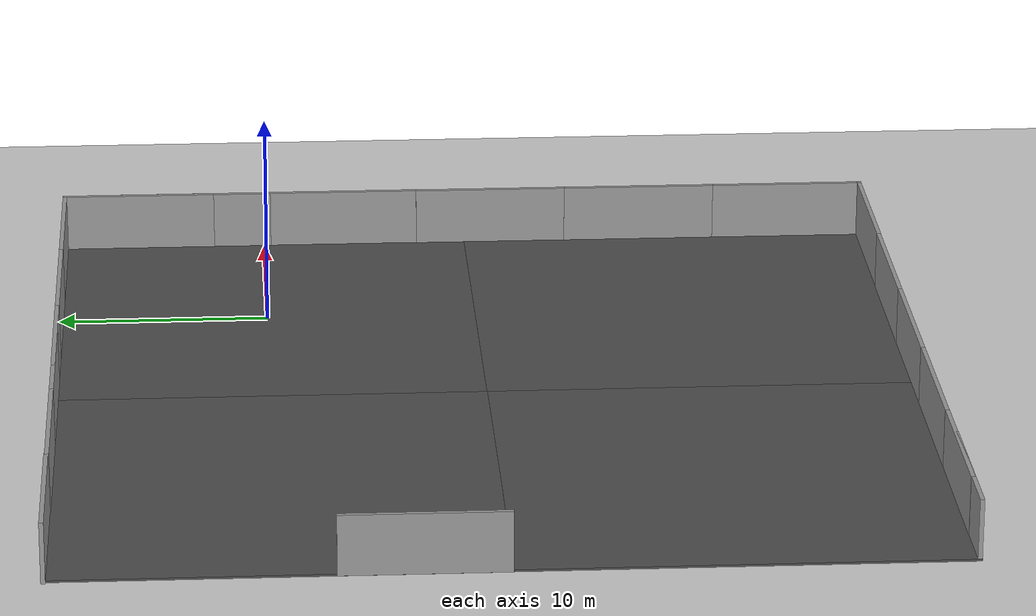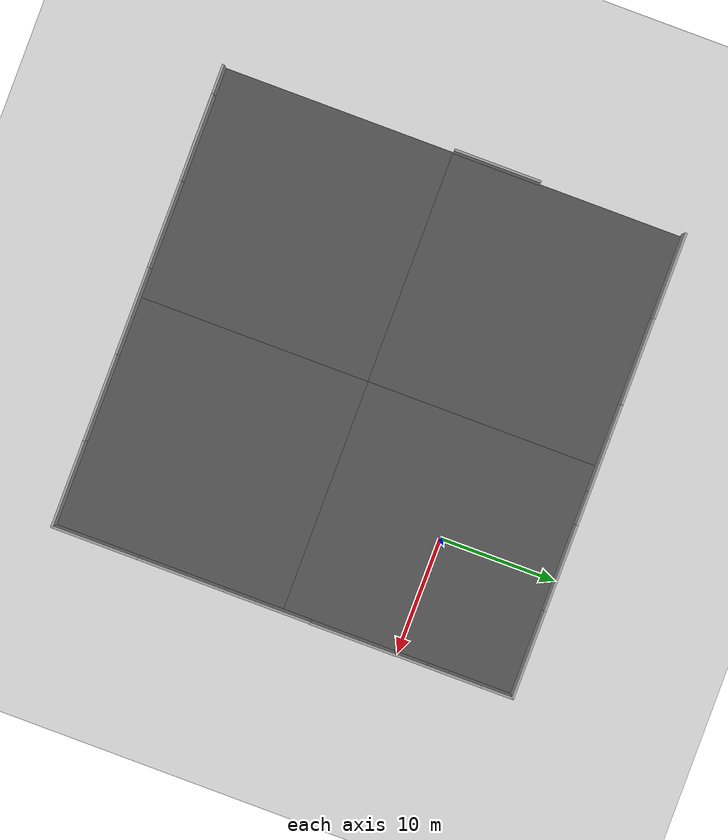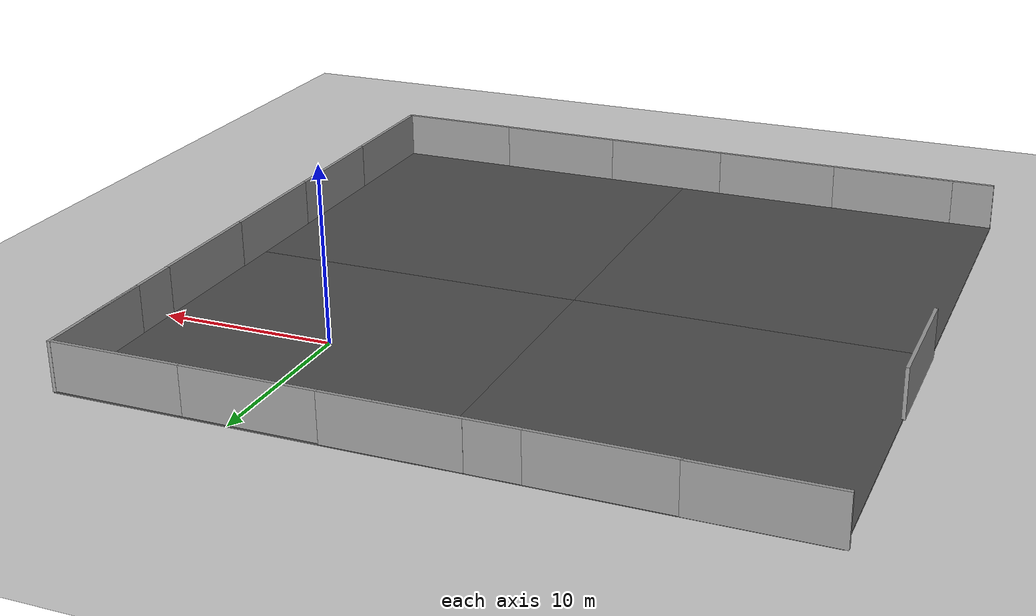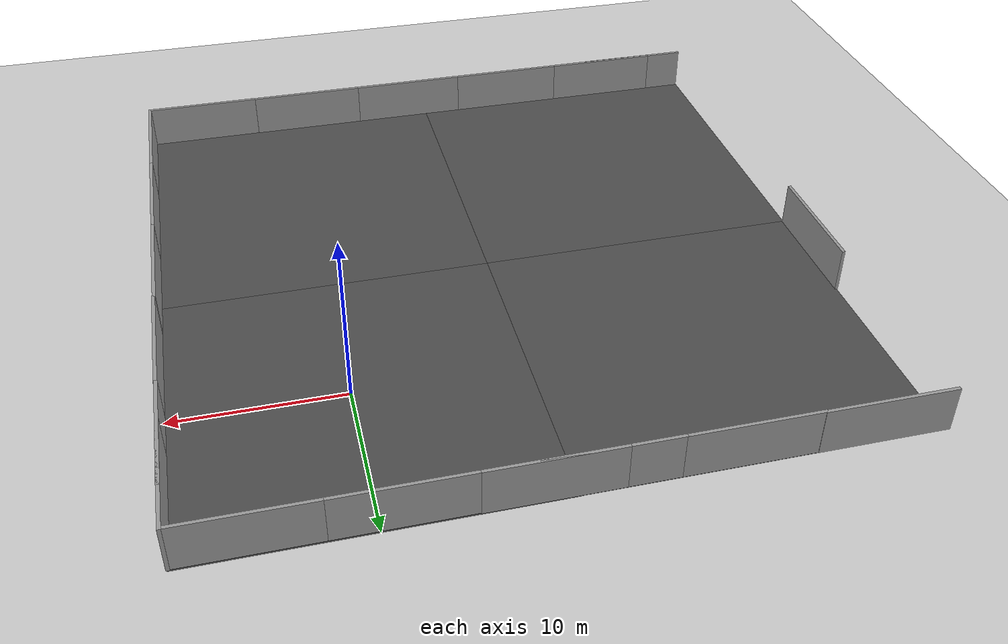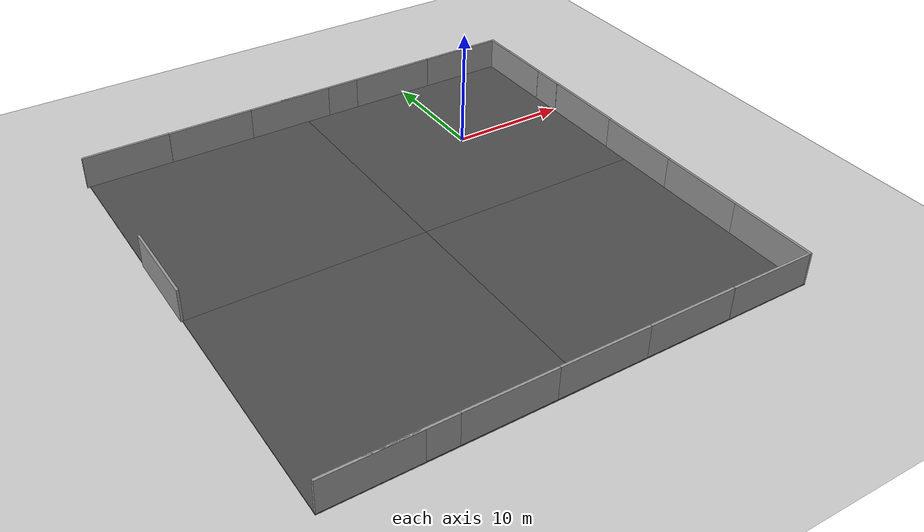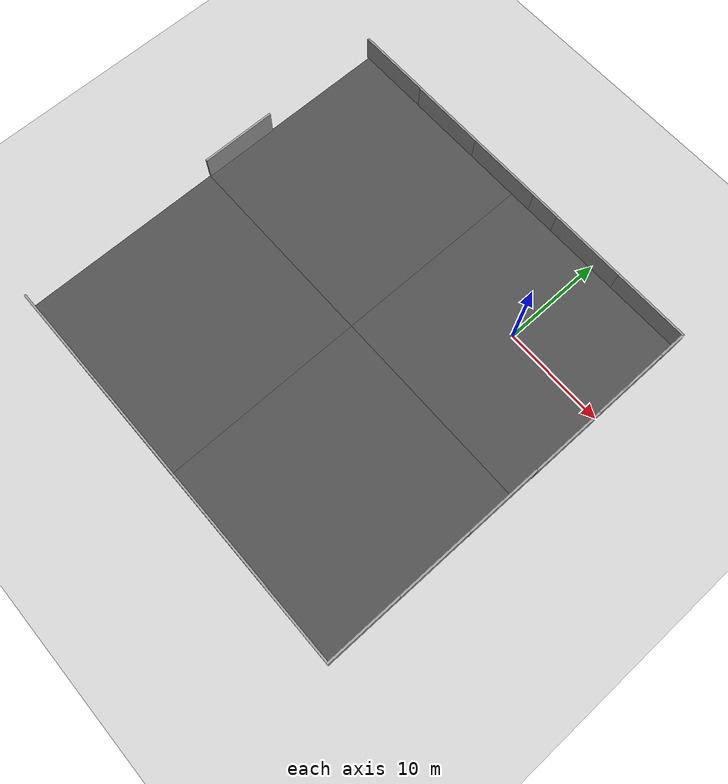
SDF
<sdf version="1.6">
 <world name="default">
  <light name="sun" type="directional">
   <pose>0 0 10 0 -0 0</pose>
   <diffuse>0.8 0.8 0.8 1</diffuse>
   <specular>0.2 0.2 0.2 1</specular>
   <attenuation>
    <range>1000</range>
    <constant>0.9</constant>
    <linear>0.01</linear>
    <quadratic>0.001</quadratic>
   </attenuation>
   <direction>-0.5 0.1 -0.9</direction>
  </light>
  <model name="ground_plane">
   <static>1</static>
   <link name="link">
    <collision name="collision">
     <geometry><plane><normal>0 0 1</normal><size>100 100</size></plane></geometry>
     <surface><friction><ode><mu>100</mu><mu2>50</mu2></ode></friction></surface>
    </collision>
    <visual name="visual">
     <cast_shadows>0</cast_shadows>
     <geometry><plane><normal>0 0 1</normal><size>100 100</size></plane></geometry>
     <material>
      <script><uri>file://media/materials/scripts/gazebo.material</uri><name>Gazebo/Grey</name></script>
     </material>
    </visual>
   </link>
  </model>
  <gravity>0 0 -9.8</gravity>
  <magnetic_field>6e-06 2.3e-05 -4.2e-05</magnetic_field>
  <atmosphere type="adiabatic"/>
  <physics name="default_physics" default="0" type="ode">
   <max_step_size>0.001</max_step_size>
   <real_time_factor>1</real_time_factor>
   <real_time_update_rate>1000</real_time_update_rate>
  </physics>
  <scene><ambient>0.4 0.4 0.4 1</ambient><background>0.7 0.7 0.7 1</background><shadows>1</shadows></scene>
  <spherical_coordinates>
   <surface_model>EARTH_WGS84</surface_model>
   <latitude_deg>0</latitude_deg>
   <longitude_deg>0</longitude_deg>
   <elevation>0</elevation>
   <heading_deg>0</heading_deg>
  </spherical_coordinates>
  <model name="asphalt_plane">
   <static>1</static>
   <link name="link">
    <collision name="collision"><geometry><box><size>20 20 0.1</size></box></geometry></collision>
    <visual name="visual">
     <cast_shadows>0</cast_shadows>
     <geometry><box><size>20 20 0.1</size></box></geometry>
     <material>
      <script>
       <uri>model://asphalt_plane/materials/scripts</uri>
       <uri>model://asphalt_plane/materials/textures</uri>
       <name>vrc/asphalt</name>
      </script>
     </material>
    </visual>
   </link>
   <pose>0.001658 0.000287 0 0 -0 0</pose>
  </model>
  <model name="asphalt_plane_0">
   <static>1</static>
   <link name="link">
    <collision name="collision"><geometry><box><size>20 20 0.1</size></box></geometry></collision>
    <visual name="visual">
     <cast_shadows>0</cast_shadows>
     <geometry><box><size>20 20 0.1</size></box></geometry>
     <material>
      <script>
       <uri>model://asphalt_plane/materials/scripts</uri>
       <uri>model://asphalt_plane/materials/textures</uri>
       <name>vrc/asphalt</name>
      </script>
     </material>
    </visual>
   </link>
   <pose>-19.9933 -0.018587 0 0 -0 0</pose>
  </model>
  <model name="asphalt_plane_1">
   <static>1</static>
   <link name="link">
    <collision name="collision"><geometry><box><size>20 20 0.1</size></box></geometry></collision>
    <visual name="visual">
     <cast_shadows>0</cast_shadows>
     <geometry><box><size>20 20 0.1</size></box></geometry>
     <material>
      <script>
       <uri>model://asphalt_plane/materials/scripts</uri>
       <uri>model://asphalt_plane/materials/textures</uri>
       <name>vrc/asphalt</name>
      </script>
     </material>
    </visual>
   </link>
   <pose>0.01008 -19.9938 0 0 -0 0</pose>
  </model>
  <model name="asphalt_plane_2">
   <static>1</static>
   <link name="link">
    <collision name="collision"><geometry><box><size>20 20 0.1</size></box></geometry></collision>
    <visual name="visual">
     <cast_shadows>0</cast_shadows>
     <geometry><box><size>20 20 0.1</size></box></geometry>
     <material>
      <script>
       <uri>model://asphalt_plane/materials/scripts</uri>
       <uri>model://asphalt_plane/materials/textures</uri>
       <name>vrc/asphalt</name>
      </script>
     </material>
    </visual>
   </link>
   <pose>-19.9758 -20.0053 0 0 -0 0</pose>
  </model>
  <model name="grey_wall">
   <static>1</static>
   <link name="link">
    <pose>0 0 1.4 0 -0 0</pose>
    <collision name="collision"><geometry><box><size>7.5 0.2 2.8</size></box></geometry></collision>
    <visual name="visual">
     <cast_shadows>0</cast_shadows>
     <geometry><box><size>7.5 0.2 2.8</size></box></geometry>
     <material>
      <script>
       <uri>model://grey_wall/materials/scripts</uri>
       <uri>model://grey_wall/materials/textures</uri>
       <name>vrc/grey_wall</name>
      </script>
     </material>
    </visual>
   </link>
   <pose>6.26139 9.89737 0 0 -0 0</pose>
  </model>
  <model name="grey_wall_0">
   <static>1</static>
   <link name="link">
    <pose>0 0 1.4 0 -0 0</pose>
    <collision name="collision"><geometry><box><size>7.5 0.2 2.8</size></box></geometry></collision>
    <visual name="visual">
     <cast_shadows>0</cast_shadows>
     <geometry><box><size>7.5 0.2 2.8</size></box></geometry>
     <material>
      <script>
       <uri>model://grey_wall/materials/scripts</uri>
       <uri>model://grey_wall/materials/textures</uri>
       <name>vrc/grey_wall</name>
      </script>
     </material>
    </visual>
   </link>
   <pose>-1.22883 9.898 0 0 -0 0</pose>
  </model>
  <model name="grey_wall_1">
   <static>1</static>
   <link name="link">
    <pose>0 0 1.4 0 -0 0</pose>
    <collision name="collision"><geometry><box><size>7.5 0.2 2.8</size></box></geometry></collision>
    <visual name="visual">
     <cast_shadows>0</cast_shadows>
     <geometry><box><size>7.5 0.2 2.8</size></box></geometry>
     <material>
      <script>
       <uri>model://grey_wall/materials/scripts</uri>
       <uri>model://grey_wall/materials/textures</uri>
       <name>vrc/grey_wall</name>
      </script>
     </material>
    </visual>
   </link>
   <pose>-8.68907 9.90301 0 0 -0 0</pose>
  </model>
  <model name="grey_wall_5">
   <static>1</static>
   <link name="link">
    <pose>0 0 1.4 0 -0 0</pose>
    <collision name="collision"><geometry><box><size>7.5 0.2 2.8</size></box></geometry></collision>
    <visual name="visual">
     <cast_shadows>0</cast_shadows>
     <geometry><box><size>7.5 0.2 2.8</size></box></geometry>
     <material>
      <script>
       <uri>model://grey_wall/materials/scripts</uri>
       <uri>model://grey_wall/materials/textures</uri>
       <name>vrc/grey_wall</name>
      </script>
     </material>
    </visual>
   </link>
   <pose>6.25331 -29.8842 0 0 -0 0</pose>
  </model>
  <model name="grey_wall_6">
   <static>1</static>
   <link name="link">
    <pose>0 0 1.4 0 -0 0</pose>
    <collision name="collision"><geometry><box><size>7.5 0.2 2.8</size></box></geometry></collision>
    <visual name="visual">
     <cast_shadows>0</cast_shadows>
     <geometry><box><size>7.5 0.2 2.8</size></box></geometry>
     <material>
      <script>
       <uri>model://grey_wall/materials/scripts</uri>
       <uri>model://grey_wall/materials/textures</uri>
       <name>vrc/grey_wall</name>
      </script>
     </material>
    </visual>
   </link>
   <pose>-1.24339 -29.8691 0 0 -0 0</pose>
  </model>
  <model name="grey_wall_7">
   <static>1</static>
   <link name="link">
    <pose>0 0 1.4 0 -0 0</pose>
    <collision name="collision"><geometry><box><size>7.5 0.2 2.8</size></box></geometry></collision>
    <visual name="visual">
     <cast_shadows>0</cast_shadows>
     <geometry><box><size>7.5 0.2 2.8</size></box></geometry>
     <material>
      <script>
       <uri>model://grey_wall/materials/scripts</uri>
       <uri>model://grey_wall/materials/textures</uri>
       <name>vrc/grey_wall</name>
      </script>
     </material>
    </visual>
   </link>
   <pose>-8.71854 -29.871 0 0 -0 0</pose>
  </model>
  <model name="grey_wall_8">
   <static>1</static>
   <link name="link">
    <pose>0 0 1.4 0 -0 0</pose>
    <collision name="collision"><geometry><box><size>7.5 0.2 2.8</size></box></geometry></collision>
    <visual name="visual">
     <cast_shadows>0</cast_shadows>
     <geometry><box><size>7.5 0.2 2.8</size></box></geometry>
     <material>
      <script>
       <uri>model://grey_wall/materials/scripts</uri>
       <uri>model://grey_wall/materials/textures</uri>
       <name>vrc/grey_wall</name>
      </script>
     </material>
    </visual>
   </link>
   <pose>-16.2125 -29.8749 0 0 -0 0</pose>
  </model>
  <model name="grey_wall_9">
   <static>1</static>
   <link name="link">
    <pose>0 0 1.4 0 -0 0</pose>
    <collision name="collision"><geometry><box><size>7.5 0.2 2.8</size></box></geometry></collision>
    <visual name="visual">
     <cast_shadows>0</cast_shadows>
     <geometry><box><size>7.5 0.2 2.8</size></box></geometry>
     <material>
      <script>
       <uri>model://grey_wall/materials/scripts</uri>
       <uri>model://grey_wall/materials/textures</uri>
       <name>vrc/grey_wall</name>
      </script>
     </material>
    </visual>
   </link>
   <pose>-23.7004 -29.8812 0 0 -0 0</pose>
  </model>
  <model name="grey_wall_10">
   <static>1</static>
   <link name="link">
    <pose>0 0 1.4 0 -0 0</pose>
    <collision name="collision"><geometry><box><size>7.5 0.2 2.8</size></box></geometry></collision>
    <visual name="visual">
     <cast_shadows>0</cast_shadows>
     <geometry><box><size>7.5 0.2 2.8</size></box></geometry>
     <material>
      <script>
       <uri>model://grey_wall/materials/scripts</uri>
       <uri>model://grey_wall/materials/textures</uri>
       <name>vrc/grey_wall</name>
      </script>
     </material>
    </visual>
   </link>
   <pose>-26.2026 -29.8981 0 0 -0 0</pose>
  </model>
  <model name="grey_wall_11">
   <static>1</static>
   <link name="link">
    <pose>0 0 1.4 0 -0 0</pose>
    <collision name="collision"><geometry><box><size>7.5 0.2 2.8</size></box></geometry></collision>
    <visual name="visual">
     <cast_shadows>0</cast_shadows>
     <geometry><box><size>7.5 0.2 2.8</size></box></geometry>
     <material>
      <script>
       <uri>model://grey_wall/materials/scripts</uri>
       <uri>model://grey_wall/materials/textures</uri>
       <name>vrc/grey_wall</name>
      </script>
     </material>
    </visual>
   </link>
   <pose>9.91711 -26.2425 0 0 -0 1.57</pose>
  </model>
  <model name="grey_wall_12">
   <static>1</static>
   <link name="link">
    <pose>0 0 1.4 0 -0 0</pose>
    <collision name="collision"><geometry><box><size>7.5 0.2 2.8</size></box></geometry></collision>
    <visual name="visual">
     <cast_shadows>0</cast_shadows>
     <geometry><box><size>7.5 0.2 2.8</size></box></geometry>
     <material>
      <script>
       <uri>model://grey_wall/materials/scripts</uri>
       <uri>model://grey_wall/materials/textures</uri>
       <name>vrc/grey_wall</name>
      </script>
     </material>
    </visual>
   </link>
   <pose>9.92544 -18.7756 0 0 -0 1.57</pose>
  </model>
  <model name="grey_wall_13">
   <static>1</static>
   <link name="link">
    <pose>0 0 1.4 0 -0 0</pose>
    <collision name="collision"><geometry><box><size>7.5 0.2 2.8</size></box></geometry></collision>
    <visual name="visual">
     <cast_shadows>0</cast_shadows>
     <geometry><box><size>7.5 0.2 2.8</size></box></geometry>
     <material>
      <script>
       <uri>model://grey_wall/materials/scripts</uri>
       <uri>model://grey_wall/materials/textures</uri>
       <name>vrc/grey_wall</name>
      </script>
     </material>
    </visual>
   </link>
   <pose>9.93975 -11.3552 0 0 -0 1.57</pose>
  </model>
  <model name="grey_wall_14">
   <static>1</static>
   <link name="link">
    <pose>0 0 1.4 0 -0 0</pose>
    <collision name="collision"><geometry><box><size>7.5 0.2 2.8</size></box></geometry></collision>
    <visual name="visual">
     <cast_shadows>0</cast_shadows>
     <geometry><box><size>7.5 0.2 2.8</size></box></geometry>
     <material>
      <script>
       <uri>model://grey_wall/materials/scripts</uri>
       <uri>model://grey_wall/materials/textures</uri>
       <name>vrc/grey_wall</name>
      </script>
     </material>
    </visual>
   </link>
   <pose>9.97575 -3.92874 0 0 -0 1.57</pose>
  </model>
  <model name="grey_wall_15">
   <static>1</static>
   <link name="link">
    <pose>0 0 1.4 0 -0 0</pose>
    <collision name="collision"><geometry><box><size>7.5 0.2 2.8</size></box></geometry></collision>
    <visual name="visual">
     <cast_shadows>0</cast_shadows>
     <geometry><box><size>7.5 0.2 2.8</size></box></geometry>
     <material>
      <script>
       <uri>model://grey_wall/materials/scripts</uri>
       <uri>model://grey_wall/materials/textures</uri>
       <name>vrc/grey_wall</name>
      </script>
     </material>
    </visual>
   </link>
   <pose>9.96294 3.4276 0 0 -0 1.57</pose>
  </model>
  <model name="grey_wall_16">
   <static>1</static>
   <link name="link">
    <pose>0 0 1.4 0 -0 0</pose>
    <collision name="collision"><geometry><box><size>7.5 0.2 2.8</size></box></geometry></collision>
    <visual name="visual">
     <cast_shadows>0</cast_shadows>
     <geometry><box><size>7.5 0.2 2.8</size></box></geometry>
     <material>
      <script>
       <uri>model://grey_wall/materials/scripts</uri>
       <uri>model://grey_wall/materials/textures</uri>
       <name>vrc/grey_wall</name>
      </script>
     </material>
    </visual>
   </link>
   <pose>9.95838 6.25172 0 0 -0 1.57</pose>
  </model>
  <model name="grey_wall_2">
   <static>1</static>
   <link name="link">
    <pose>0 0 1.4 0 -0 0</pose>
    <collision name="collision"><geometry><box><size>7.5 0.2 2.8</size></box></geometry></collision>
    <visual name="visual">
     <cast_shadows>0</cast_shadows>
     <geometry><box><size>7.5 0.2 2.8</size></box></geometry>
     <material>
      <script>
       <uri>model://grey_wall/materials/scripts</uri>
       <uri>model://grey_wall/materials/textures</uri>
       <name>vrc/grey_wall</name>
      </script>
     </material>
    </visual>
   </link>
   <pose>-11.6157 9.89757 0 0 -0 0</pose>
  </model>
  <model name="grey_wall_2_clone">
   <static>1</static>
   <link name="link">
    <pose>0 0 1.4 0 -0 0</pose>
    <collision name="collision"><geometry><box><size>7.5 0.2 2.8</size></box></geometry></collision>
    <visual name="visual">
     <cast_shadows>0</cast_shadows>
     <geometry><box><size>7.5 0.2 2.8</size></box></geometry>
     <material>
      <script>
       <uri>model://grey_wall/materials/scripts</uri>
       <uri>model://grey_wall/materials/textures</uri>
       <name>vrc/grey_wall</name>
      </script>
     </material>
    </visual>
   </link>
   <pose>-19.0648 9.90203 0 0 -0 0</pose>
  </model>
  <model name="grey_wall_2_clone_clone">
   <static>1</static>
   <link name="link">
    <pose>0 0 1.4 0 -0 0</pose>
    <collision name="collision"><geometry><box><size>7.5 0.2 2.8</size></box></geometry></collision>
    <visual name="visual">
     <cast_shadows>0</cast_shadows>
     <geometry><box><size>7.5 0.2 2.8</size></box></geometry>
     <material>
      <script>
       <uri>model://grey_wall/materials/scripts</uri>
       <uri>model://grey_wall/materials/textures</uri>
       <name>vrc/grey_wall</name>
      </script>
     </material>
    </visual>
   </link>
   <pose>-26.4593 9.93167 0 0 -0 0</pose>
  </model>
  <model name="grey_wall_11_clone">
   <static>1</static>
   <link name="link">
    <pose>0 0 1.4 0 -0 0</pose>
    <collision name="collision"><geometry><box><size>7.5 0.2 2.8</size></box></geometry></collision>
    <visual name="visual">
     <cast_shadows>0</cast_shadows>
     <geometry><box><size>7.5 0.2 2.8</size></box></geometry>
     <material>
      <script>
       <uri>model://grey_wall/materials/scripts</uri>
       <uri>model://grey_wall/materials/textures</uri>
       <name>vrc/grey_wall</name>
      </script>
     </material>
    </visual>
   </link>
   <pose>-29.9953 -6.22955 0 0 -0 1.57</pose>
  </model>
 </world>
</sdf>
